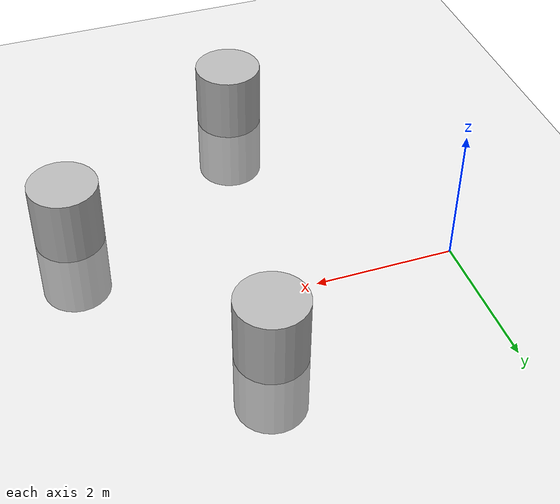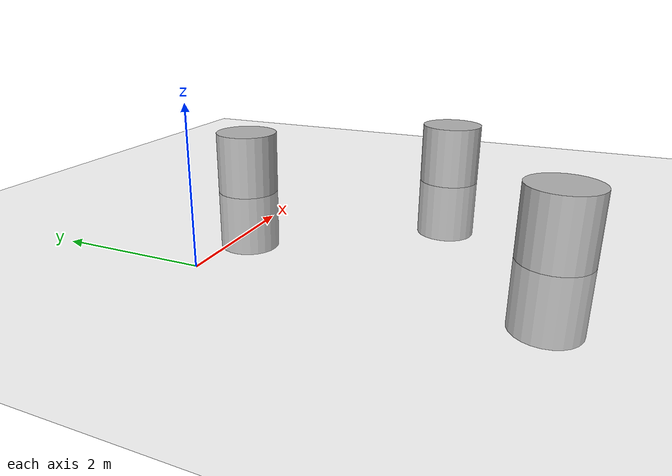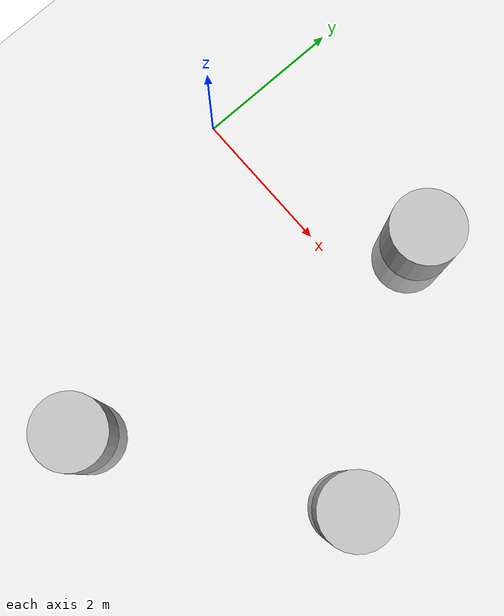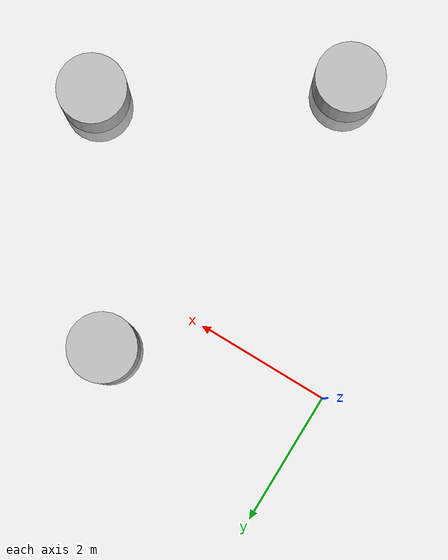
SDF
<?xml version="1.0" ?>
<sdf version="1.6">
  <world name="nav_test_world">
    <include>
      <uri>model://sun</uri>
    </include>
    <include>
      <uri>model://ground_plane</uri>
    </include>

    <!-- A few simple cylinder obstacles -->
    <model name="cylinder_1">
      <static>true</static>
      <pose>3 1 0 0 0 0</pose>
      <link name="link">
        <collision name="collision"><geometry><cylinder><radius>0.5</radius><length>2.0</length></cylinder></geometry></collision>
        <visual name="visual"><geometry><cylinder><radius>0.5</radius><length>2.0</length></cylinder></geometry></visual>
      </link>
    </model>

    <model name="cylinder_2">
      <static>true</static>
      <pose>5 -2 0 0 0 0</pose>
      <link name="link">
        <collision name="collision"><geometry><cylinder><radius>0.5</radius><length>2.0</length></cylinder></geometry></collision>
        <visual name="visual"><geometry><cylinder><radius>0.5</radius><length>2.0</length></cylinder></geometry></visual>
      </link>
    </model>

    <model name="cylinder_3">
      <static>true</static>
      <pose>2 -4 0 0 0 0</pose>
      <link name="link">
        <collision name="collision"><geometry><cylinder><radius>0.5</radius><length>2.0</length></cylinder></geometry></collision>
        <visual name="visual"><geometry><cylinder><radius>0.5</radius><length>2.0</length></cylinder></geometry></visual>
      </link>
    </model>

  </world>
</sdf>
